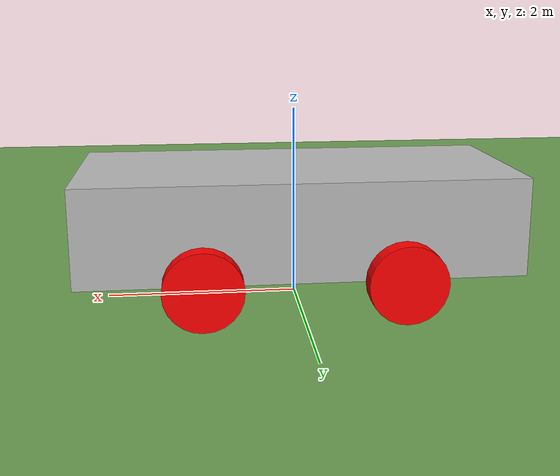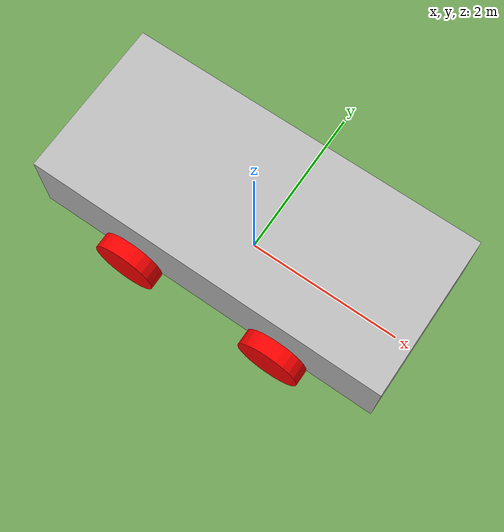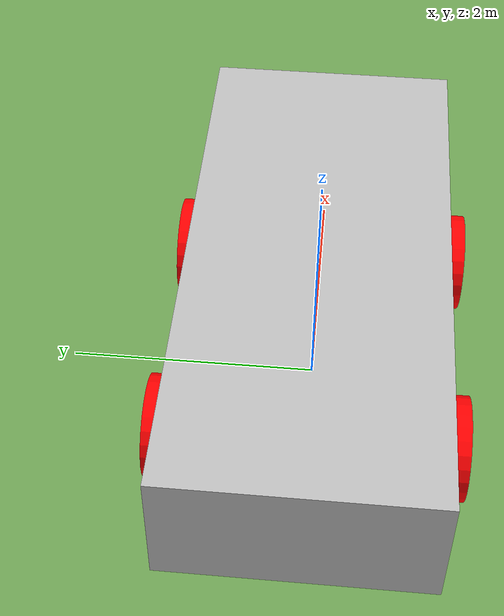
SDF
<?xml version="1.0" ?>
<sdf version="1.7">
  <world name="valley_terrain">
    <physics name="default_physics" default="true" type="ode">
      <max_step_size>0.001</max_step_size>
      <real_time_factor>1</real_time_factor>
    </physics>
    <scene>
      <ambient>0.4 0.4 0.4 1</ambient>
      <background>0.53 0.81 0.92 1</background>
      <shadows>true</shadows>
    </scene>
    <light type="directional" name="sun">
      <cast_shadows>true</cast_shadows>
      <pose>0 0 100 0 0 0</pose>
      <diffuse>0.9 0.9 0.9 1</diffuse>
      <specular>0.2 0.2 0.2 1</specular>
      <direction>-0.5 0.1 -0.9</direction>
    </light>

    <!-- ========== TERRAIN ========== -->
    <model name="terrain"><static>true</static><pose>0 0 0 0 0 0</pose>
      <link name="terrain_link">
        <collision name="terrain_col">
          <geometry><mesh><uri>file://DrivableTerrain.stl</uri><scale>1 1 1</scale></mesh></geometry>
          <surface><friction><ode><mu>0.9</mu><mu2>0.9</mu2></ode></friction>
            <contact><ode><min_depth>0.001</min_depth></ode></contact></surface>
        </collision>
        <visual name="terrain_vis">
          <geometry><mesh><uri>file://DrivableTerrain.stl</uri><scale>1 1 1</scale></mesh></geometry>
          <material><ambient>0.35 0.52 0.28 1</ambient><diffuse>0.42 0.62 0.32 1</diffuse>
            <specular>0.05 0.05 0.05 1</specular></material>
        </visual>
      </link>
    </model>

    <!-- ========== CAR ========== -->
<model name='vehicle' canonical_link='chassis'>
   <pose relative_to='world'>0 0 0 0 0 0</pose>
    <plugin
    filename="gz-sim-sensors-system"
    name="gz::sim::systems::Sensors">
    <render_engine>ogre2</render_engine>
    </plugin>
   <plugin
      filename="gz-sim-diff-drive-system"
      name="gz::sim::systems::DiffDrive">
      <left_joint>left_front_wheel_joint</left_joint>
      <left_joint>left_rear_wheel_joint</left_joint>
      <right_joint>right_front_wheel_joint</right_joint>
      <right_joint>right_rear_wheel_joint</right_joint>
      <wheel_separation>2.2</wheel_separation>   <!-- 2.0 body + 2x 0.1 half-wheel-width -->
      <wheel_radius>0.4</wheel_radius>            <!-- 0.8 diameter / 2 -->
      <odom_publish_frequency>1</odom_publish_frequency>
      <topic>cmd_vel</topic>
   </plugin>
   <plugin
      filename="gz-sim-pose-publisher-system"
      name="gz::sim::systems::PosePublisher">
      <publish_link_pose>false</publish_link_pose>
      <publish_collision_pose>false</publish_collision_pose>
      <publish_visual_pose>false</publish_visual_pose>
      <publish_model_pose>true</publish_model_pose>
      <publish_nested_model_pose>false</publish_nested_model_pose>
      <update_frequency>30</update_frequency>
   </plugin>
      <link name='chassis'>
         <sensor name="depth_camera" type="depth_camera">
         <pose>2.25 0 0.5 0 0 0</pose> <!-- position relative to chassis -->

         <always_on>true</always_on>
         <update_rate>30</update_rate>
         <topic>/camera</topic>

         <camera>
            <horizontal_fov>1.047</horizontal_fov>
            <image>
               <width>640</width>
               <height>480</height>
               <format>R8G8B8</format>
            </image>
            <clip>
               <near>0.05</near>
               <far>15.0</far>
            </clip>
            <depth_camera>
               <output>depths</output>
            </depth_camera>
         </camera>
         </sensor>
         <pose relative_to='__model__'>0 0 0.4 0 0 0</pose>
         <inertial>
            <!--inertial properties of the link mass, inertia matix-->
            <mass>1.14395</mass>
            <inertia>
               <ixx>0.095329</ixx>
               <ixy>0</ixy>
               <ixz>0</ixz>
               <iyy>0.381317</iyy>
               <iyz>0</iyz>
               <izz>0.476646</izz>
            </inertia>
         </inertial>
         <visual name='visual'>
            <pose>0 0 0.5 0 0 0</pose>
            <geometry>
               <box>
                  <size>4.5 2.0 1</size>
               </box>
            </geometry>
         </visual>
         <collision name='collision'>
            <pose>0 0 0.5 0 0 0</pose>
            <geometry>
               <box>
                  <size>4.5 2.0 1</size>
               </box>
            </geometry>
         </collision>
         </link>
         <link name='left_front_wheel'>
         <pose relative_to="chassis">1 1.1 0 -1.5707 0 0</pose>
         <inertial>
            <mass>1</mass>
            <inertia>
               <ixx>0.043333</ixx>
               <ixy>0</ixy>
               <ixz>0</ixz>
               <iyy>0.043333</iyy>
               <iyz>0</iyz>
               <izz>0.08</izz>
            </inertia>
         </inertial>
         <visual name='visual'>
            <geometry>
               <cylinder>
                  <radius>0.4</radius>
                  <length>0.2</length>
               </cylinder>
            </geometry>
            <material>
               <ambient>1.0 0.0 0.0 1</ambient>
               <diffuse>1.0 0.0 0.0 1</diffuse>
               <specular>1.0 0.0 0.0 1</specular>
            </material>
         </visual>
         <collision name='collision'>
            <geometry>
               <cylinder>
                  <radius>0.4</radius>
                  <length>0.2</length>
               </cylinder>
            </geometry>
         </collision>
         </link>
         <link name='left_rear_wheel'>
         <pose relative_to="chassis">-1 1.1 0 -1.5707 0 0</pose>
         <inertial>
            <mass>1</mass>
            <inertia>
               <ixx>0.043333</ixx>
               <ixy>0</ixy>
               <ixz>0</ixz>
               <iyy>0.043333</iyy>
               <iyz>0</iyz>
               <izz>0.08</izz>
            </inertia>
         </inertial>
         <visual name='visual'>
            <geometry>
               <cylinder>
                  <radius>0.4</radius>
                  <length>0.2</length>
               </cylinder>
            </geometry>
            <material>
               <ambient>1.0 0.0 0.0 1</ambient>
               <diffuse>1.0 0.0 0.0 1</diffuse>
               <specular>1.0 0.0 0.0 1</specular>
            </material>
         </visual>
         <collision name='collision'>
            <geometry>
               <cylinder>
                  <radius>0.4</radius>
                  <length>0.2</length>
               </cylinder>
            </geometry>
         </collision>
         </link>
         <!--The same as left wheels but with different position-->
         <link name='right_front_wheel'>
         <pose relative_to="chassis">1 -1.1 0 -1.5707 0 0</pose>
         <!--angles are in radian-->
         <inertial>
            <mass>1</mass>
            <inertia>
               <ixx>0.043333</ixx>
               <ixy>0</ixy>
               <ixz>0</ixz>
               <iyy>0.043333</iyy>
               <iyz>0</iyz>
               <izz>0.08</izz>
            </inertia>
         </inertial>
         <visual name='visual'>
            <geometry>
               <cylinder>
                  <radius>0.4</radius>
                  <length>0.2</length>
               </cylinder>
            </geometry>
            <material>
               <ambient>1.0 0.0 0.0 1</ambient>
               <diffuse>1.0 0.0 0.0 1</diffuse>
               <specular>1.0 0.0 0.0 1</specular>
            </material>
         </visual>
         <collision name='collision'>
            <geometry>
               <cylinder>
                  <radius>0.4</radius>
                  <length>0.2</length>
               </cylinder>
            </geometry>
         </collision>
         </link>
         <link name='right_rear_wheel'>
         <pose relative_to="chassis">-1 -1.1 0 -1.5707 0 0</pose>
         <!--angles are in radian-->
         <inertial>
            <mass>1</mass>
            <inertia>
               <ixx>0.043333</ixx>
               <ixy>0</ixy>
               <ixz>0</ixz>
               <iyy>0.043333</iyy>
               <iyz>0</iyz>
               <izz>0.08</izz>
            </inertia>
         </inertial>
         <visual name='visual'>
            <geometry>
               <cylinder>
                  <radius>0.4</radius>
                  <length>0.2</length>
               </cylinder>
            </geometry>
            <material>
               <ambient>1.0 0.0 0.0 1</ambient>
               <diffuse>1.0 0.0 0.0 1</diffuse>
               <specular>1.0 0.0 0.0 1</specular>
            </material>
         </visual>
         <collision name='collision'>
            <geometry>
               <cylinder>
                  <radius>0.4</radius>
                  <length>0.2</length>
               </cylinder>
            </geometry>
         </collision>
         </link>
         <joint name='left_front_wheel_joint' type='revolute'>
            <pose relative_to='left_front_wheel'/>
            <parent>chassis</parent>
            <child>left_front_wheel</child>
            <axis>
               <xyz expressed_in='__model__'>0 1 0</xyz>
               <!--can be defined as any frame or even arbitrary frames-->
               <limit>
                  <lower>-1.79769e+308</lower>
                  <!--negative infinity-->
                  <upper>1.79769e+308</upper>
                  <!--positive infinity-->
               </limit>
            </axis>
         </joint>
         <joint name='left_rear_wheel_joint' type='revolute'>
            <pose relative_to='left_rear_wheel'/>
            <parent>chassis</parent>
            <child>left_rear_wheel</child>
            <axis>
               <xyz expressed_in='__model__'>0 1 0</xyz>
               <!--can be defined as any frame or even arbitrary frames-->
               <limit>
                  <lower>-1.79769e+308</lower>
                  <!--negative infinity-->
                  <upper>1.79769e+308</upper>
                  <!--positive infinity-->
               </limit>
            </axis>
         </joint>
         <joint name='right_front_wheel_joint' type='revolute'>
            <pose relative_to='right_front_wheel'/>
            <parent>chassis</parent>
            <child>right_front_wheel</child>
            <axis>
               <xyz expressed_in='__model__'>0 1 0</xyz>
               <!--can be defined as any frame or even arbitrary frames-->
               <limit>
                  <lower>-1.79769e+308</lower>
                  <!--negative infinity-->
                  <upper>1.79769e+308</upper>
                  <!--positive infinity-->
               </limit>
            </axis>
         </joint>
         <joint name='right_rear_wheel_joint' type='revolute'>
            <pose relative_to='right_rear_wheel'/>
            <parent>chassis</parent>
            <child>right_rear_wheel</child>
            <axis>
               <xyz expressed_in='__model__'>0 1 0</xyz>
               <limit>
                  <lower>-1.79769e+308</lower>
                  <!--negative infinity-->
                  <upper>1.79769e+308</upper>
                  <!--positive infinity-->
               </limit>
            </axis>
         </joint>
      </model>
  </world>
</sdf>
